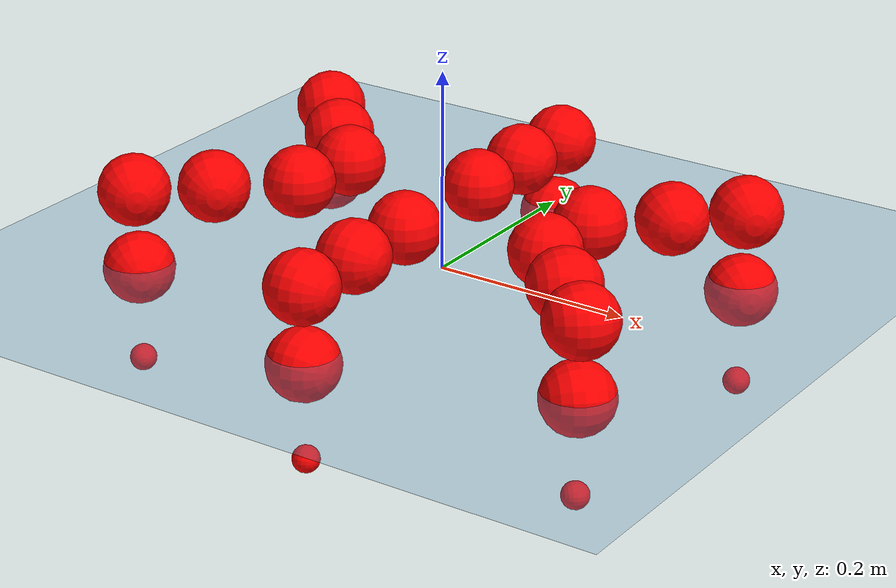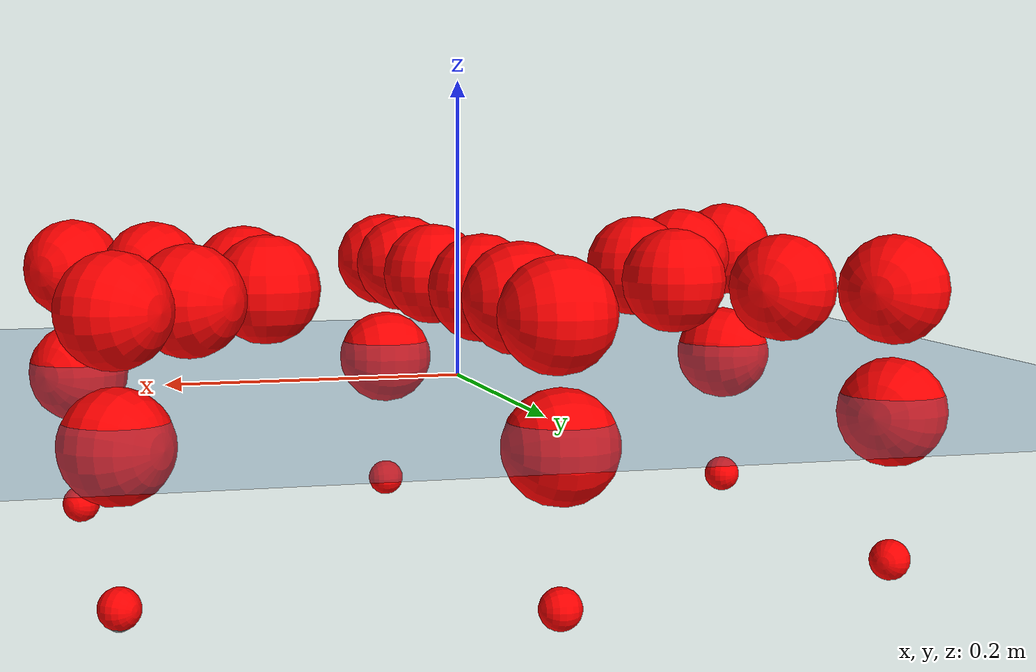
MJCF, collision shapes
<mujoco model="Golem">
  <compiler angle="radian" assetdir="assets" balanceinertia="true" inertiafromgeom="false"/>

  <option timestep="0.005" density="1.2" viscosity="2e-05"/>

  <size nkey="1"/>

  <visual>
    <quality shadowsize="8192"/>
    <map shadowclip="0.5"/>
  </visual>

  <default>
    <default class="/">
      <joint armature="0.01" damping="0.01" frictionloss="0.01"/>
      <geom contype="0" conaffinity="0" group="1" solref="-1000 -80"/>
      <site size="0.01 0.005 0.005" group="5"/>
      <general forcelimited="true" biastype="affine" gainprm="25" biasprm="0 -25 -0.5"/>
      <default class="visual">
        <geom type="mesh" group="2"/>
      </default>
      <default class="collision">
        <geom group="3"/>
      </default>
      <default class="foot">
        <geom size="0.01 0 0" condim="6" group="4" priority="1" solimp="0.015 1 0.01"/>
      </default>
      <default class="reward_collision_sphere">
        <geom group="5" rgba="1 0 0 1"/>
      </default>
    </default>
  </default>

  <asset>
    <texture type="skybox" colorspace="auto" name="//unnamed_texture_0" builtin="gradient" rgb1="0.95 0.95 0.95" rgb2="0.95 0.95 0.95" width="100" height="600"/>
    <texture type="2d" colorspace="auto" name="texplane" builtin="checker" rgb1="0.345 0.575 0.748" rgb2="0.345 0.575 0.748" markrgb="1 1 1" width="512" height="512"/>
    <material name="MatPlane" class="/" texture="texplane" texuniform="true" texrepeat="2 2" specular="0.9"/>
    <mesh name="body" class="/" file="body.stl" scale="0.001 0.001 0.001"/>
    <mesh name="coxa" class="/" file="coxa.stl" scale="0.001 0.001 0.001"/>
    <mesh name="femur" class="/" file="femur.stl" scale="0.001 0.001 0.001"/>
    <mesh name="tibia" class="/" file="tibia.stl" scale="0.001 0.001 0.001"/>
    <mesh name="tarsus" class="/" file="tarsus.stl" scale="0.001 0.001 0.001"/>
  </asset>

  <worldbody>
    <geom name="floor" class="/" size="100 100 0.125" type="plane" group="0" material="MatPlane"/>
    <light name="toplight_shadow" class="/" pos="0 0 5" dir="0.0990148 0.0990148 -0.990148" type="directional" ambient="0.04 0.04 0.04" diffuse="0.55 0.55 0.55" specular="0.12 0.12 0.12"/>
    <light name="toplight_fill" class="/" pos="0 0 5" dir="0.0990148 0.0990148 -0.990148" type="directional" castshadow="false" ambient="0.04 0.04 0.04" diffuse="0.3 0.3 0.3" specular="0.08 0.08 0.08"/>
    <body name="trunk" pos="0.000289546 9.98409e-05 -0.00145499" quat="0.999999 0.000812816 0.00108451 -3.82722e-05">
      <inertial pos="0.00044997 0.0020821 -0.00359618" quat="0.999921 -0.00310619 -0.00235311 -0.0119759" mass="2.63897" diaginertia="0.0060964 0.00164726 0.0145064"/>
      <joint name="//unnamed_joint_0" type="free"/>
      <geom name="//unnamed_geom_1" class="/" pos="0 0 0.0683762" quat="1 0 0 0" type="mesh" rgba="0.9 0.9 0.9 1" mesh="body"/>
      <site name="imu" class="/" pos="0.103882 0.000112737 0.117365" size="0.00889353"/>
      <camera name="track" class="/" pos="0 -1.39783 0" quat="0.707107 0.707107 0 0" mode="trackcom"/>
      <camera name="ego_camera" class="/" pos="0.117099 0 0.106838" quat="-0.5 -0.5 0.5 0.5"/>
      <body name="coxa_RR" pos="-0.161626 -0.0563851 0.0706997" quat="0.382747 -5.46492e-05 -0.000133107 -0.923853">
        <inertial pos="-0.00095296 -0.00273533 -0.000496602" quat="0.999948 0.00538288 0.00275072 0.00818242" mass="0.146561" diaginertia="0.00591164 0.0016688 0.0139309"/>
        <joint name="coxa_joint_RR" class="/" pos="0 0 0" axis="-0.00672815 0.00487059 -0.999966" range="-3.1934 3.14583" armature="0.00817821" damping="0.0185959" frictionloss="0.00978964"/>
        <geom name="//unnamed_geom_2" class="/" type="mesh" rgba="0.2 0.2 0.2 1" mesh="coxa"/>
        <geom name="//unnamed_geom_3" class="reward_collision_sphere" size="0.0355741" pos="-0.0270229 0 0"/>
        <body name="femur_RR" pos="0.0560081 0.00122081 0.0018837" quat="0.499898 -0.500061 0.499963 0.500078">
          <inertial pos="0.00102621 -0.00247592 0.00150278" quat="1 -0.00062209 -0.0005462 -0.000190032" mass="0.138519" diaginertia="0.00588745 0.00164689 0.0135493"/>
          <joint name="femur_joint_RR" class="/" pos="0 0 0" axis="0.00986548 -0.00159035 -0.99995" range="-3.10646 3.13527" armature="0.00776271" damping="0.000406672" frictionloss="0.00806809"/>
          <geom name="//unnamed_geom_4" class="/" type="mesh" rgba="0.9 0.9 0.9 1" mesh="femur"/>
          <geom name="//unnamed_geom_5" class="reward_collision_sphere" size="0.0355741"/>
          <body name="tibia_RR" pos="-0.000968999 -0.0765467 -0.00272602" quat="2.00112e-06 1 -2.3524e-05 -1.56812e-05">
            <inertial pos="-0.00273234 0.00189075 -0.00147872" quat="0.999953 -0.00360626 -0.00420363 0.00797036" mass="0.137401" diaginertia="0.00557068 0.00159519 0.013515"/>
            <joint name="tibia_joint_RR" class="/" pos="0 0 0" axis="0.00271458 0.0047683 0.999985" range="-3.13673 3.08618" armature="0.00919478" damping="0.0195106" frictionloss="0.00871832"/>
            <geom name="//unnamed_geom_6" class="/" type="mesh" rgba="0.2 0.2 0.2 1" mesh="tibia"/>
            <geom name="//unnamed_geom_7" class="reward_collision_sphere" size="0.0355741"/>
            <body name="tarsus_RR" pos="0.0816215 -0.00135561 0.00034157" quat="1 -0.000597177 -0.000498874 0.000380187">
              <inertial pos="0.0565398 -0.000807359 0.00239746" quat="0.499167 0.498186 0.502593 0.500043" mass="0.142973" diaginertia="0.00592528 0.00177677 0.0142672"/>
              <joint name="tarsus_joint_RR" class="/" pos="0 0 0" axis="0.00627227 0.00191081 0.999979" range="-3.13949 3.15591" armature="0.00896244" damping="0.00083766" frictionloss="0.00886137"/>
              <geom name="//unnamed_geom_8" class="/" type="mesh" rgba="0.9 0.9 0.9 1" mesh="tarsus"/>
              <geom name="foot_1" class="foot" size="0.00895152" pos="0.100886 0 0" quat="0 -0.707107 0 0.707107"/>
              <geom name="//unnamed_geom_10" class="reward_collision_sphere" size="0.0355741"/>
              <geom name="//unnamed_geom_11" class="reward_collision_sphere" size="0.0133403" pos="0.0968321 0 0"/>
              <site name="foot_1" class="foot" pos="0.100886 0 0" quat="0 -0.707107 0 0.707107" size="0.00889353"/>
            </body>
          </body>
        </body>
      </body>
      <body name="coxa_RM" pos="0.000644169 -0.0907261 0.066238" quat="0.707009 0.000377572 -0.000783442 -0.707204">
        <inertial pos="0.000487457 -0.00278139 -0.000274766" quat="0.999964 0.000761594 -0.0065307 -0.00533808" mass="0.13598" diaginertia="0.00555809 0.00157562 0.0138715"/>
        <joint name="coxa_joint_RM" class="/" pos="0 0 0" axis="0.00109689 -0.00433109 -0.99999" stiffness="0.00454127" range="-3.14158 3.1398" armature="0.0077757" damping="0.00959119" frictionloss="0.0101445"/>
        <geom name="//unnamed_geom_12" class="/" type="mesh" rgba="0.2 0.2 0.2 1" mesh="coxa"/>
        <geom name="//unnamed_geom_13" class="reward_collision_sphere" size="0.0355741" pos="-0.0270229 0 0"/>
        <body name="femur_RM" pos="0.0560312 0.0014816 0.00144812" quat="0.499916 -0.500019 0.499989 0.500076">
          <inertial pos="-0.000834258 -0.00282846 -0.000952859" quat="0.999981 -0.00505948 0.0030035 0.00170956" mass="0.143834" diaginertia="0.00607698 0.00161523 0.0141226"/>
          <joint name="femur_joint_RM" class="/" pos="0 0 0" axis="-0.00612106 0.00893242 -0.999941" range="-3.18385 3.18262" armature="0.00934695" damping="0.0214177" frictionloss="0.00934027"/>
          <geom name="//unnamed_geom_14" class="/" type="mesh" rgba="0.9 0.9 0.9 1" mesh="femur"/>
          <geom name="//unnamed_geom_15" class="reward_collision_sphere" size="0.0355741"/>
          <body name="tibia_RM" pos="0.00202275 -0.0773345 -0.000950747" quat="6.81276e-05 1 4.50538e-05 -0.000178561">
            <inertial pos="-0.00198757 -0.00112254 -0.0016533" quat="0.999934 -0.00943817 -0.00145972 0.00630936" mass="0.134014" diaginertia="0.00593582 0.00162619 0.0138299"/>
            <joint name="tibia_joint_RM" class="/" pos="0 0 0" axis="0.00213106 0.00154778 0.999997" stiffness="0.0061362" range="-3.18593 3.09652" armature="0.00779979" damping="0" frictionloss="0.00796687"/>
            <geom name="//unnamed_geom_16" class="/" type="mesh" rgba="0.2 0.2 0.2 1" mesh="tibia"/>
            <geom name="//unnamed_geom_17" class="reward_collision_sphere" size="0.0355741"/>
            <body name="tarsus_RM" pos="0.0772756 -0.00151911 0.00120804" quat="0.999999 0.000115601 0.000433802 -0.00123506">
              <inertial pos="0.0513504 -0.000199991 -0.0023146" quat="0.494057 0.492958 0.506829 0.505988" mass="0.140867" diaginertia="0.00589303 0.00167022 0.0138081"/>
              <joint name="tarsus_joint_RM" class="/" pos="0 0 0" axis="0.000223163 2.13293e-05 1" range="-3.15876 3.14171" armature="0.00913401" damping="0.00587494" frictionloss="0.00869644"/>
              <geom name="//unnamed_geom_18" class="/" type="mesh" rgba="0.9 0.9 0.9 1" mesh="tarsus"/>
              <geom name="foot_2" class="foot" size="0.00828784" pos="0.100886 0 0" quat="0 -0.707107 0 0.707107"/>
              <geom name="//unnamed_geom_20" class="reward_collision_sphere" size="0.0355741"/>
              <geom name="//unnamed_geom_21" class="reward_collision_sphere" size="0.0133403" pos="0.0968321 0 0"/>
              <site name="foot_2" class="foot" pos="0.100886 0 0" quat="0 -0.707107 0 0.707107" size="0.00889353"/>
            </body>
          </body>
        </body>
      </body>
      <body name="coxa_RF" pos="0.159481 -0.0578057 0.068681" quat="0.923626 -7.64348e-05 0.000435828 -0.383295">
        <inertial pos="0.00157056 -0.0018112 -0.000317697" quat="0.999989 -0.000962373 0.00307328 0.00344468" mass="0.141668" diaginertia="0.00611535 0.00169615 0.0138217"/>
        <joint name="coxa_joint_RF" class="/" pos="0 0 0" axis="0.000405442 -0.00735655 -0.999973" range="-3.14531 3.13702" armature="0.00892215" damping="0" frictionloss="0.00782517"/>
        <geom name="//unnamed_geom_22" class="/" type="mesh" rgba="0.2 0.2 0.2 1" mesh="coxa"/>
        <geom name="//unnamed_geom_23" class="reward_collision_sphere" size="0.0355741" pos="-0.0270229 0 0"/>
        <body name="femur_RF" pos="0.051659 -0.000255094 0.000950407" quat="0.49996 -0.500045 0.499967 0.500029">
          <inertial pos="5.61917e-05 0.00077066 -0.00254375" quat="0.999899 0.00599026 0.0118157 0.00505397" mass="0.13633" diaginertia="0.00573279 0.00160372 0.0136255"/>
          <joint name="femur_joint_RF" class="/" pos="0 0 0" axis="-0.00747107 0.00426752 -0.999963" range="-3.0846 3.1945" armature="0.00920412" damping="0.00728706" frictionloss="0.00930049"/>
          <geom name="//unnamed_geom_24" class="/" type="mesh" rgba="0.9 0.9 0.9 1" mesh="femur"/>
          <geom name="//unnamed_geom_25" class="reward_collision_sphere" size="0.0355741"/>
          <body name="tibia_RF" pos="0.000464819 -0.0753953 -0.00262945" quat="-7.38119e-05 1 -3.4236e-05 0.000195305">
            <inertial pos="0.00171386 -0.00228941 0.000197373" quat="0.999921 0.012199 -0.00285332 0.00124785" mass="0.144486" diaginertia="0.00586138 0.00167901 0.0141101"/>
            <joint name="tibia_joint_RF" class="/" pos="0 0 0" axis="-0.000450017 0.00438283 0.99999" stiffness="0.0135608" range="-3.15944 3.09428" armature="0.00897805" damping="0.0143264" frictionloss="0.00892644"/>
            <geom name="//unnamed_geom_26" class="/" type="mesh" rgba="0.2 0.2 0.2 1" mesh="tibia"/>
            <geom name="//unnamed_geom_27" class="reward_collision_sphere" size="0.0355741"/>
            <body name="tarsus_RF" pos="0.0754426 -0.0019336 0.00101041" quat="0.999999 0.00123801 -0.000452936 0.000261891">
              <inertial pos="0.0550617 -0.00104272 0.00103484" quat="0.499396 0.499915 0.500337 0.500351" mass="0.138071" diaginertia="0.00603647 0.0016813 0.0135735"/>
              <joint name="tarsus_joint_RF" class="/" pos="0 0 0" axis="0.00392404 -0.00325844 0.999987" range="-3.12535 3.1234" armature="0.00912879" damping="0" frictionloss="0.00900102"/>
              <geom name="//unnamed_geom_28" class="/" type="mesh" rgba="0.9 0.9 0.9 1" mesh="tarsus"/>
              <geom name="foot_3" class="foot" size="0.00903758" pos="0.100886 0 0" quat="0 -0.707107 0 0.707107"/>
              <geom name="//unnamed_geom_30" class="reward_collision_sphere" size="0.0355741"/>
              <geom name="//unnamed_geom_31" class="reward_collision_sphere" size="0.0133403" pos="0.0968321 0 0"/>
              <site name="foot_3" class="foot" pos="0.100886 0 0" quat="0 -0.707107 0 0.707107" size="0.00889353"/>
            </body>
          </body>
        </body>
      </body>
      <body name="coxa_LR" pos="-0.159918 0.0623021 0.0666535" quat="0.382609 2.46568e-05 0.000174679 0.92391">
        <inertial pos="-0.000426257 -0.00259646 -0.00221309" quat="0.99991 -0.000542667 0.0125454 0.00465795" mass="0.135015" diaginertia="0.00587513 0.00170001 0.0138356"/>
        <joint name="coxa_joint_LR" class="/" pos="0 0 0" axis="0.00719908 -0.00632436 -0.999954" stiffness="0.014775" range="-3.14101 3.14054" armature="0.00994953" damping="0.0128464" frictionloss="0.00999931"/>
        <geom name="//unnamed_geom_32" class="/" type="mesh" rgba="0.2 0.2 0.2 1" mesh="coxa"/>
        <geom name="//unnamed_geom_33" class="reward_collision_sphere" size="0.0355741" pos="-0.0270229 0 0"/>
        <body name="femur_LR" pos="0.0522484 -0.0015216 -0.00153319" quat="0.499679 -0.500488 0.500703 0.499127">
          <inertial pos="0.000979372 -0.00266117 -0.000955773" quat="0.999903 -0.0109673 0.00165323 0.00845509" mass="0.142548" diaginertia="0.00579684 0.00163193 0.0137097"/>
          <joint name="femur_joint_LR" class="/" pos="0 0 0" axis="-0.00123236 -0.00295027 0.999995" range="-3.12914 3.13582" armature="0.0101546" damping="0.0158725" frictionloss="0.00904301"/>
          <geom name="//unnamed_geom_34" class="/" type="mesh" rgba="0.9 0.9 0.9 1" mesh="femur"/>
          <geom name="//unnamed_geom_35" class="reward_collision_sphere" size="0.0355741"/>
          <body name="tibia_LR" pos="-0.00213442 -0.0766365 -0.00320521" quat="-7.69351e-05 1 -0.000354708 -7.25831e-05">
            <inertial pos="0.00052064 0.00197952 0.00152344" quat="0.999989 -0.00312864 -0.00345967 -3.2505e-06" mass="0.145169" diaginertia="0.0060197 0.00173048 0.0147911"/>
            <joint name="tibia_joint_LR" class="/" pos="0 0 0" axis="-0.000714655 0.00017381 -1" range="-3.09487 3.13653" armature="0.00904342" damping="0.0114519" frictionloss="0.0101145"/>
            <geom name="//unnamed_geom_36" class="/" type="mesh" rgba="0.2 0.2 0.2 1" mesh="tibia"/>
            <geom name="//unnamed_geom_37" class="reward_collision_sphere" size="0.0355741"/>
            <body name="tarsus_LR" pos="0.0793784 -0.000673839 -0.00203722" quat="1 0.000330297 7.62921e-06 0.000516831">
              <inertial pos="0.0549942 0.000454195 9.65981e-05" quat="0.50005 0.50033 0.499701 0.499919" mass="0.140416" diaginertia="0.00619627 0.00167442 0.0140593"/>
              <joint name="tarsus_joint_LR" class="/" pos="0 0 0" axis="0.000150068 -3.09881e-05 -1" range="-3.08383 3.08238" armature="0.00767209" damping="0.0164608" frictionloss="0.00882478"/>
              <geom name="//unnamed_geom_38" class="/" type="mesh" rgba="0.9 0.9 0.9 1" mesh="tarsus"/>
              <geom name="foot_4" class="foot" size="0.00873728" pos="0.100886 0 0" quat="0.707107 0 -0.707107 0"/>
              <geom name="//unnamed_geom_40" class="reward_collision_sphere" size="0.0355741"/>
              <geom name="//unnamed_geom_41" class="reward_collision_sphere" size="0.0133403" pos="0.0968321 0 0"/>
              <site name="foot_4" class="foot" pos="0.100886 0 0" quat="0.707107 0 -0.707107 0" size="0.00889353"/>
            </body>
          </body>
        </body>
      </body>
      <body name="coxa_LM" pos="-0.0005596 0.088546 0.0665807" quat="0.706949 0.000547661 0.00038405 0.707265">
        <inertial pos="0.000505156 -0.00162372 0.000427768" quat="0.999907 0.00298062 0.00156277 0.013207" mass="0.144117" diaginertia="0.00570741 0.00165144 0.0135973"/>
        <joint name="coxa_joint_LM" class="/" pos="0 0 0" axis="-0.00884226 -0.00572013 -0.999945" range="-3.12025 3.09711" armature="0.00845742" damping="0.0217152" frictionloss="0.00875505"/>
        <geom name="//unnamed_geom_42" class="/" type="mesh" rgba="0.2 0.2 0.2 1" mesh="coxa"/>
        <geom name="//unnamed_geom_43" class="reward_collision_sphere" size="0.0355741" pos="-0.0270229 0 0"/>
        <body name="femur_LM" pos="0.0529957 0.00144522 0.000116205" quat="0.500011 -0.49997 0.499997 0.500022">
          <inertial pos="-0.000830815 0.00268897 -0.00285357" quat="0.999987 -0.00488098 0.000500853 -0.00169055" mass="0.142625" diaginertia="0.00569273 0.0016964 0.013875"/>
          <joint name="femur_joint_LM" class="/" pos="0 0 0" axis="-0.00106328 -0.009156 0.999958" stiffness="0.00993334" range="-3.13657 3.13612" armature="0.00880377" damping="0" frictionloss="0.00996846"/>
          <geom name="//unnamed_geom_44" class="/" type="mesh" rgba="0.9 0.9 0.9 1" mesh="femur"/>
          <geom name="//unnamed_geom_45" class="reward_collision_sphere" size="0.0355741"/>
          <body name="tibia_LM" pos="0.00344203 -0.0752114 0.000867217" quat="0.000585616 1 0.000538129 -0.00023349">
            <inertial pos="0.000858464 -0.000274341 0.0026459" quat="0.999927 -0.0073539 0.00843896 0.00449237" mass="0.13966" diaginertia="0.00602928 0.00167569 0.0136213"/>
            <joint name="tibia_joint_LM" class="/" pos="0 0 0" axis="0.00734337 -0.000615619 -0.999973" stiffness="0.0114495" range="-3.15173 3.17578" armature="0.00911191" damping="0" frictionloss="0.0100506"/>
            <geom name="//unnamed_geom_46" class="/" type="mesh" rgba="0.2 0.2 0.2 1" mesh="tibia"/>
            <geom name="//unnamed_geom_47" class="reward_collision_sphere" size="0.0355741"/>
            <body name="tarsus_LM" pos="0.0781323 -0.00309364 -0.00301027" quat="1 -3.94301e-06 7.93285e-06 -4.25228e-06">
              <inertial pos="0.0553786 -0.00147446 -0.00187209" quat="0.499824 0.500292 0.499678 0.500205" mass="0.140895" diaginertia="0.00590875 0.00166139 0.0145616"/>
              <joint name="tarsus_joint_LM" class="/" pos="0 0 0" axis="-0.00370845 0.00524901 -0.999979" range="-3.11909 3.1571" armature="0.00872119" damping="0.00676502" frictionloss="0.00825803"/>
              <geom name="//unnamed_geom_48" class="/" type="mesh" rgba="0.9 0.9 0.9 1" mesh="tarsus"/>
              <geom name="foot_5" class="foot" size="0.00910933" pos="0.100886 0 0" quat="0.707107 0 -0.707107 0"/>
              <geom name="//unnamed_geom_50" class="reward_collision_sphere" size="0.0355741"/>
              <geom name="//unnamed_geom_51" class="reward_collision_sphere" size="0.0133403" pos="0.0968321 0 0"/>
              <site name="foot_5" class="foot" pos="0.100886 0 0" quat="0.707107 0 -0.707107 0" size="0.00889353"/>
            </body>
          </body>
        </body>
      </body>
      <body name="coxa_LF" pos="0.157817 0.0603833 0.0672333" quat="0.923966 2.26179e-05 0.000228029 0.382476">
        <inertial pos="0.00258684 0.00149176 0.00216229" quat="0.999976 0.0029582 -0.00368117 -0.00512329" mass="0.138808" diaginertia="0.005941 0.0016895 0.0139192"/>
        <joint name="coxa_joint_LF" class="/" pos="0 0 0" axis="0.000628113 -0.000190337 -1" stiffness="0.00408531" range="-3.14451 3.1016" armature="0.00778402" damping="0.00384409" frictionloss="0.00932444"/>
        <geom name="//unnamed_geom_52" class="/" type="mesh" rgba="0.2 0.2 0.2 1" mesh="coxa"/>
        <geom name="//unnamed_geom_53" class="reward_collision_sphere" size="0.0355741" pos="-0.0270229 0 0"/>
        <body name="femur_LF" pos="0.0526268 -0.000758863 -0.00116177" quat="0.499968 -0.499956 0.500596 0.49948">
          <inertial pos="-0.00220702 0.00260432 0.00066777" quat="0.999925 -0.00436631 0.00451531 0.0105392" mass="0.137174" diaginertia="0.00575255 0.00164343 0.0138601"/>
          <joint name="femur_joint_LF" class="/" pos="0 0 0" axis="0.00704857 -0.00450355 0.999965" range="-3.17445 3.11936" armature="0.00904511" damping="0" frictionloss="0.00884968"/>
          <geom name="//unnamed_geom_54" class="/" type="mesh" rgba="0.9 0.9 0.9 1" mesh="femur"/>
          <geom name="//unnamed_geom_55" class="reward_collision_sphere" size="0.0355741"/>
          <body name="tibia_LF" pos="-0.000464925 -0.0731318 0.00145711" quat="0.000301104 0.999999 0.000958627 -0.000782058">
            <inertial pos="-0.00224244 0.000408233 0.000227545" quat="1 5.94591e-05 0.00013278 0.000913625" mass="0.142523" diaginertia="0.00572349 0.00165528 0.0135637"/>
            <joint name="tibia_joint_LF" class="/" pos="0 0 0" axis="-0.000929849 -0.00116673 -0.999999" stiffness="0.0120788" range="-3.14604 3.19074" armature="0.00837413" damping="0.0114358" frictionloss="0.00882599"/>
            <geom name="//unnamed_geom_56" class="/" type="mesh" rgba="0.2 0.2 0.2 1" mesh="tibia"/>
            <geom name="//unnamed_geom_57" class="reward_collision_sphere" size="0.0355741"/>
            <body name="tarsus_LF" pos="0.0803562 -0.0016547 0.000966394" quat="1 7.38333e-05 -8.25354e-05 -0.000150303">
              <inertial pos="0.0515649 -0.00220974 -0.002774" quat="0.501508 0.500066 0.502844 0.495552" mass="0.135453" diaginertia="0.00588323 0.0016426 0.0139144"/>
              <joint name="tarsus_joint_LF" class="/" pos="0 0 0" axis="-0.00248087 -0.0136928 -0.999903" range="-3.16647 3.19472" armature="0.0076994" damping="0.0146194" frictionloss="0.00850982"/>
              <geom name="//unnamed_geom_58" class="/" type="mesh" rgba="0.9 0.9 0.9 1" mesh="tarsus"/>
              <geom name="foot_6" class="foot" size="0.00980721" pos="0.100886 0 0" quat="0.707107 0 -0.707107 0"/>
              <geom name="//unnamed_geom_60" class="reward_collision_sphere" size="0.0355741"/>
              <geom name="//unnamed_geom_61" class="reward_collision_sphere" size="0.0133403" pos="0.0968321 0 0"/>
              <site name="foot_6" class="foot" pos="0.100886 0 0" quat="0.707107 0 -0.707107 0" size="0.00889353"/>
            </body>
          </body>
        </body>
      </body>
    </body>
  </worldbody>

  <contact>
    <pair class="/" geom1="floor" geom2="foot_1" name="//unnamed_contact_0"/>
    <pair class="/" geom1="floor" geom2="foot_2" name="//unnamed_contact_1"/>
    <pair class="/" geom1="floor" geom2="foot_3" name="//unnamed_contact_2"/>
    <pair class="/" geom1="floor" geom2="foot_4" name="//unnamed_contact_3"/>
    <pair class="/" geom1="floor" geom2="foot_5" name="//unnamed_contact_4"/>
    <pair class="/" geom1="floor" geom2="foot_6" name="//unnamed_contact_5"/>
  </contact>

  <actuator>
    <general name="coxa_joint_RR" class="/" joint="coxa_joint_RR" forcerange="-6.73929 6.73929" gainprm="21.2118" biasprm="0 -21.2118 -0.466965"/>
    <general name="femur_joint_RR" class="/" joint="femur_joint_RR" forcerange="-7.17881 7.17881" gainprm="21.2118" biasprm="0 -21.2118 -0.466965"/>
    <general name="tibia_joint_RR" class="/" joint="tibia_joint_RR" forcerange="-6.00837 6.00837" gainprm="21.2118" biasprm="0 -21.2118 -0.466965"/>
    <general name="tarsus_joint_RR" class="/" joint="tarsus_joint_RR" forcerange="-7.07645 7.07645" gainprm="21.2118" biasprm="0 -21.2118 -0.466965"/>
    <general name="coxa_joint_RM" class="/" joint="coxa_joint_RM" forcerange="-6.51857 6.51857" gainprm="21.2118" biasprm="0 -21.2118 -0.466965"/>
    <general name="femur_joint_RM" class="/" joint="femur_joint_RM" forcerange="-6.74505 6.74505" gainprm="21.2118" biasprm="0 -21.2118 -0.466965"/>
    <general name="tibia_joint_RM" class="/" joint="tibia_joint_RM" forcerange="-7.09609 7.09609" gainprm="21.2118" biasprm="0 -21.2118 -0.466965"/>
    <general name="tarsus_joint_RM" class="/" joint="tarsus_joint_RM" forcerange="-6.01471 6.01471" gainprm="21.2118" biasprm="0 -21.2118 -0.466965"/>
    <general name="coxa_joint_RF" class="/" joint="coxa_joint_RF" forcerange="-7.0453 7.0453" gainprm="21.2118" biasprm="0 -21.2118 -0.466965"/>
    <general name="femur_joint_RF" class="/" joint="femur_joint_RF" forcerange="-6.49002 6.49002" gainprm="21.2118" biasprm="0 -21.2118 -0.466965"/>
    <general name="tibia_joint_RF" class="/" joint="tibia_joint_RF" forcerange="-6.62877 6.62877" gainprm="21.2118" biasprm="0 -21.2118 -0.466965"/>
    <general name="tarsus_joint_RF" class="/" joint="tarsus_joint_RF" forcerange="-6.44859 6.44859" gainprm="21.2118" biasprm="0 -21.2118 -0.466965"/>
    <general name="coxa_joint_LR" class="/" joint="coxa_joint_LR" forcerange="-6.85138 6.85138" gainprm="21.2118" biasprm="0 -21.2118 -0.466965"/>
    <general name="femur_joint_LR" class="/" joint="femur_joint_LR" forcerange="-6.47454 6.47454" gainprm="21.2118" biasprm="0 -21.2118 -0.466965"/>
    <general name="tibia_joint_LR" class="/" joint="tibia_joint_LR" forcerange="-7.12496 7.12496" gainprm="21.2118" biasprm="0 -21.2118 -0.466965"/>
    <general name="tarsus_joint_LR" class="/" joint="tarsus_joint_LR" forcerange="-6.7638 6.7638" gainprm="21.2118" biasprm="0 -21.2118 -0.466965"/>
    <general name="coxa_joint_LM" class="/" joint="coxa_joint_LM" forcerange="-5.98148 5.98148" gainprm="21.2118" biasprm="0 -21.2118 -0.466965"/>
    <general name="femur_joint_LM" class="/" joint="femur_joint_LM" forcerange="-6.93797 6.93797" gainprm="21.2118" biasprm="0 -21.2118 -0.466965"/>
    <general name="tibia_joint_LM" class="/" joint="tibia_joint_LM" forcerange="-6.90167 6.90167" gainprm="21.2118" biasprm="0 -21.2118 -0.466965"/>
    <general name="tarsus_joint_LM" class="/" joint="tarsus_joint_LM" forcerange="-6.5762 6.5762" gainprm="21.2118" biasprm="0 -21.2118 -0.466965"/>
    <general name="coxa_joint_LF" class="/" joint="coxa_joint_LF" forcerange="-5.84698 5.84698" gainprm="21.2118" biasprm="0 -21.2118 -0.466965"/>
    <general name="femur_joint_LF" class="/" joint="femur_joint_LF" forcerange="-5.83246 5.83246" gainprm="21.2118" biasprm="0 -21.2118 -0.466965"/>
    <general name="tibia_joint_LF" class="/" joint="tibia_joint_LF" forcerange="-6.0194 6.0194" gainprm="21.2118" biasprm="0 -21.2118 -0.466965"/>
    <general name="tarsus_joint_LF" class="/" joint="tarsus_joint_LF" forcerange="-5.83315 5.83315" gainprm="21.2118" biasprm="0 -21.2118 -0.466965"/>
  </actuator>

  <sensor>
    <gyro site="imu" name="imu_angular_velocity"/>
    <velocimeter site="imu" name="imu_linear_velocity"/>
    <framelinvel objtype="site" objname="foot_1" name="foot_1_global_linear_velocity"/>
    <framelinvel objtype="site" objname="foot_2" name="foot_2_global_linear_velocity"/>
    <framelinvel objtype="site" objname="foot_3" name="foot_3_global_linear_velocity"/>
    <framelinvel objtype="site" objname="foot_4" name="foot_4_global_linear_velocity"/>
    <framelinvel objtype="site" objname="foot_5" name="foot_5_global_linear_velocity"/>
    <framelinvel objtype="site" objname="foot_6" name="foot_6_global_linear_velocity"/>
  </sensor>

  <keyframe>
    <key name="home" qpos="0 0 0.1457 1 0 0 0 0 0 0 0 0 0 0 0 0 0 0 0 0 0 0 0 0 0 0 0 0 0 0 0"/>
  </keyframe>
</mujoco>
